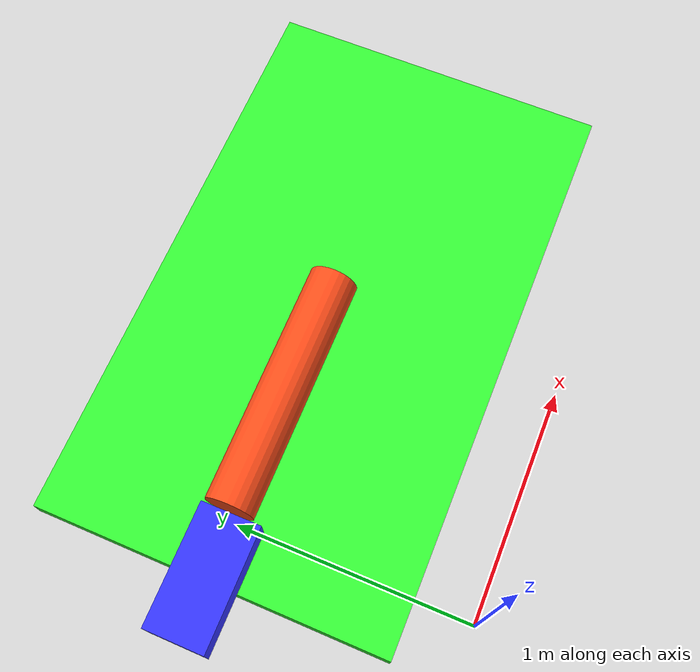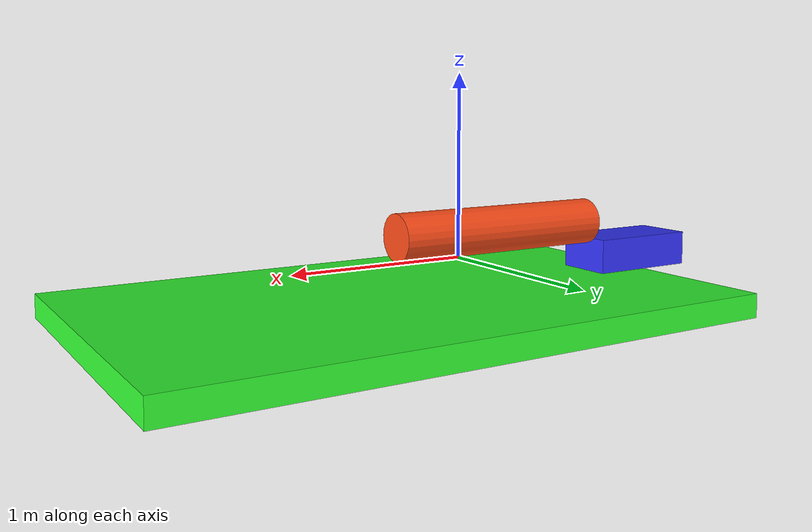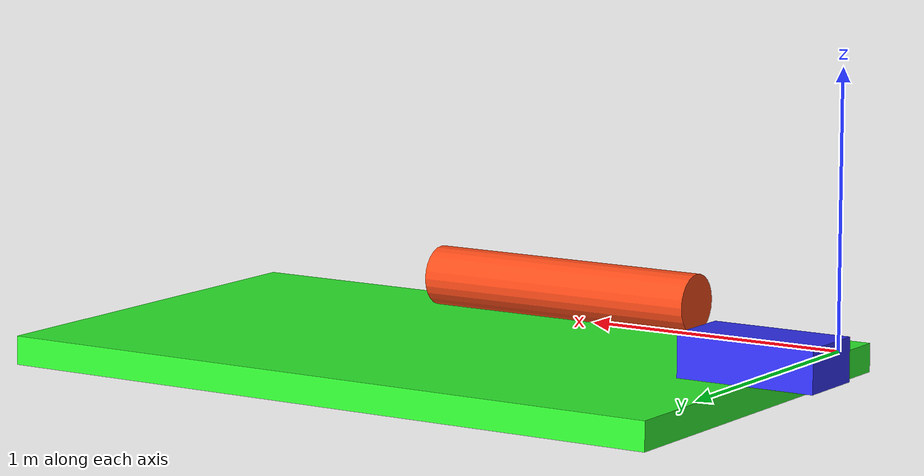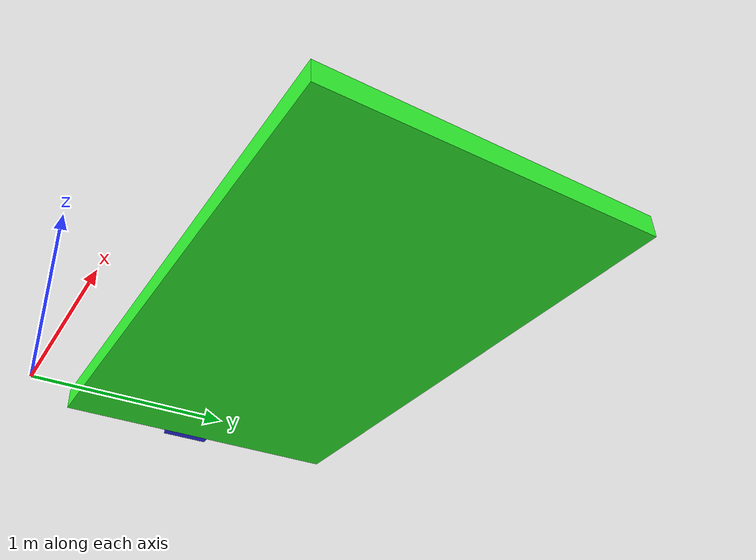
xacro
<?xml version="1.0"?>
<robot xmlns:xacro="http://www.ros.org/wiki/xacro" name="robot">

    <xacro:include filename="example_include.xacro" />

    <!-- first link cqlled "world"-->
    <link name="world"></link>

    <joint name="base_joint" type="fixed">
        <parent link="world" />
        <child link="base_link" />
        <origin xyz="1 1 0" rpy="0.0 0.0 0.0" />
    </joint>

    <link name="base_link">
    *** comment ***
        <xacro:inertial_box mass="12" x="2.5" y="1.5" z="0.1">
            <origin xyz="0.0 0.0 0.05" rpy="0.0 0.0 0.0" />
        </xacro:inertial_box>
        <visual>
            <origin xyz="0.0 0.0 0.05" rpy="0.0 0.0 0.0" />
            <geometry>
                <box size="2.5 1.5 0.1" />
                *** comment ***
                | <mesh filename="file_path" scale="1.0"/>
            </geometry>
            <material name="green" />
        </visual>
        <collision> *** collision is exactly as the visual but without the "material" ***
            <origin xyz="0.0 0.0 0.05" rpy="0.0 0.0 0.0" />
            <geometry>
                <box size="2.5 1.5 0.1" />
            </geometry>
        </collision>
    </link>

    <gazebo reference="base_link">
        <material>Gazebo/Green</material>
    </gazebo>

    <joint name="slider_joint" type="prismatic">
        <parent link="base_link" />
        <child link="slider_link" />
        <axis xyz="1 0 0" />
        <limit lower="0" upper="2" velocity="100" effort="100.0" />
        <origin xyz="-1.25 0 0.1" rpy="0 0 0" />
    </joint>

    <link name="slider_link">
        <xacro:inertial_box mass="0.5" x="0.5" y="0.25" z="0.15">
            <origin xyz="0.0 0.0 0.075" rpy="0.0 0.0 0.0" />
        </xacro:inertial_box>
        <visual>
            <origin xyz="0.0 0.0 0.075" rpy="0.0 0.0 0.0" />
            <geometry>
                <box size="0.5 0.25 0.15" />
            </geometry>
            <material name="blue" />
        </visual>
        <collision>
            <origin xyz="0.0 0.0 0.075" rpy="0.0 0.0 0.0" />
            <geometry>
                <box size="0.5 0.25 0.15" />
            </geometry>
        </collision>
    </link>

    <gazebo reference="slider_link">
        <material>Gazebo/Blue</material>
    </gazebo>

    <joint name="arm_joint" type="revolute">
        <parent link="slider_link" />
        <child link="arm_link" />
        <axis xyz="0 -1 0" />
        <limit lower="0" upper="${pi/2}" velocity="100.0" effort="100.0" />
        <origin xyz="0.25 0 0.15" rpy="0 0 0" />
    </joint>

    <xacro:property name="arm_length" value="1" />
    <xacro:property name="arm_radius" value="0.1" />
    <link name="arm_link">
        <xacro:inertial_cylinder mass="0.5" length="${arm_length}" radius="${arm_radius}">
            <origin xyz="${arm_length/2} 0.0 0.075" rpy="0.0 ${pi/2} 0.0" />
        </xacro:inertial_cylinder>
        <visual>
            <origin xyz="${arm_length/2} 0.0 0.075" rpy="0.0 ${pi/2} 0.0" />
            <geometry>
                <cylinder length="${arm_length}" radius="${arm_radius}" />
            </geometry>
            <material name="orange" />
        </visual>
        <collision>
            <origin xyz="${arm_length/2} 0.0 0.075" rpy="0.0 ${pi/2} 0.0" />
            <geometry>
                <cylinder length="${arm_length}" radius="${arm_radius}" />
            </geometry>
        </collision>
    </link>

    <gazebo reference="arm_link">
        <material>Gazebo/Orange</material>
    </gazebo>

</robot>

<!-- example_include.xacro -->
<robot xmlns:xacro="http://www.ros.org/wiki/xacro">

    <material name="white">
        <color rgba="1 1 1 1" />
    </material>

    <material name="orange">
        <color rgba="1 0.3 0.1 1" />
    </material>

    <material name="blue">
        <color rgba="0.2 0.2 1 1" />
    </material>

    <material name="green">
        <color rgba="0.2 1 0.2 1" />
    </material>

    <!-- Define equations that calculate the inertias-->

    <xacro:macro name="inertial_box" params="mass x y z *origin">
        <inertial>
            <xacro:insert_block name="origin" />
            <mass value="${mass}" />
            <inertia ixx="${(1/12) * mass * (y*y+z*z)}" ixy="0.0" ixz="0.0"
                iyy="${(1/12) * mass * (x*x+z*z)}" iyz="0.0" izz="${(1/12) * mass * (x*x+y*y)}" />
        </inertial>
    </xacro:macro>

    <xacro:macro name="inertial_cylinder" params="mass length radius *origin">
        <inertial>
            <xacro:insert_block name="origin" />
            <mass value="${mass}" />
            <inertia ixx="${(1/12) * mass * (3*radius*radius + length*length)}" ixy="0.0" ixz="0.0"
                iyy="${(1/12) * mass * (3*radius*radius + length*length)}" iyz="0.0"
                izz="${(1/2) * mass * (radius*radius)}" />
        </inertial>
    </xacro:macro>
</robot>
